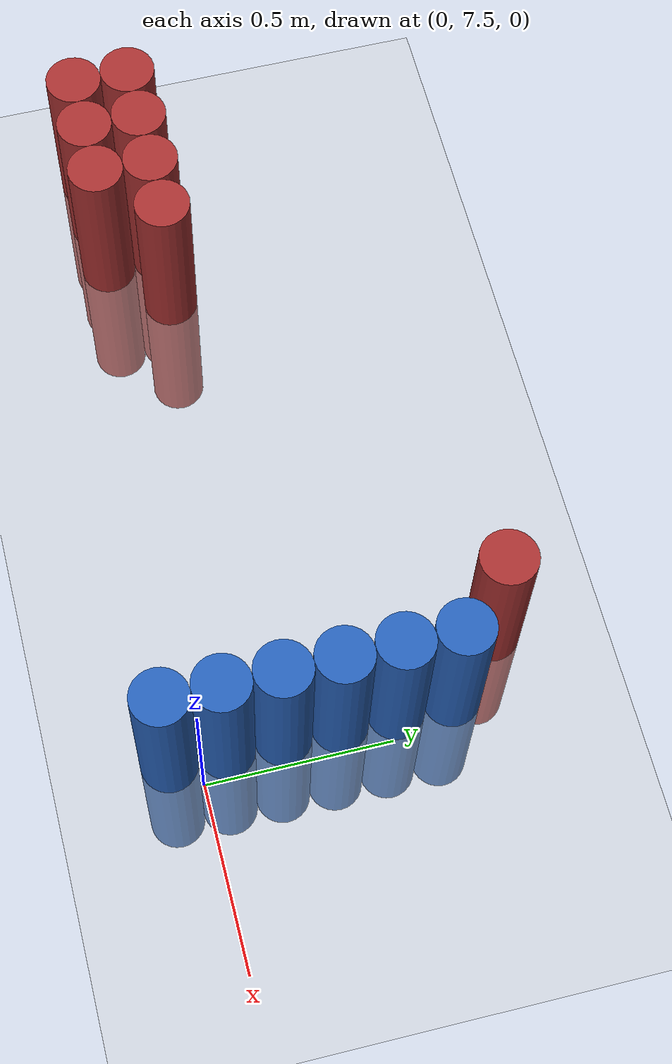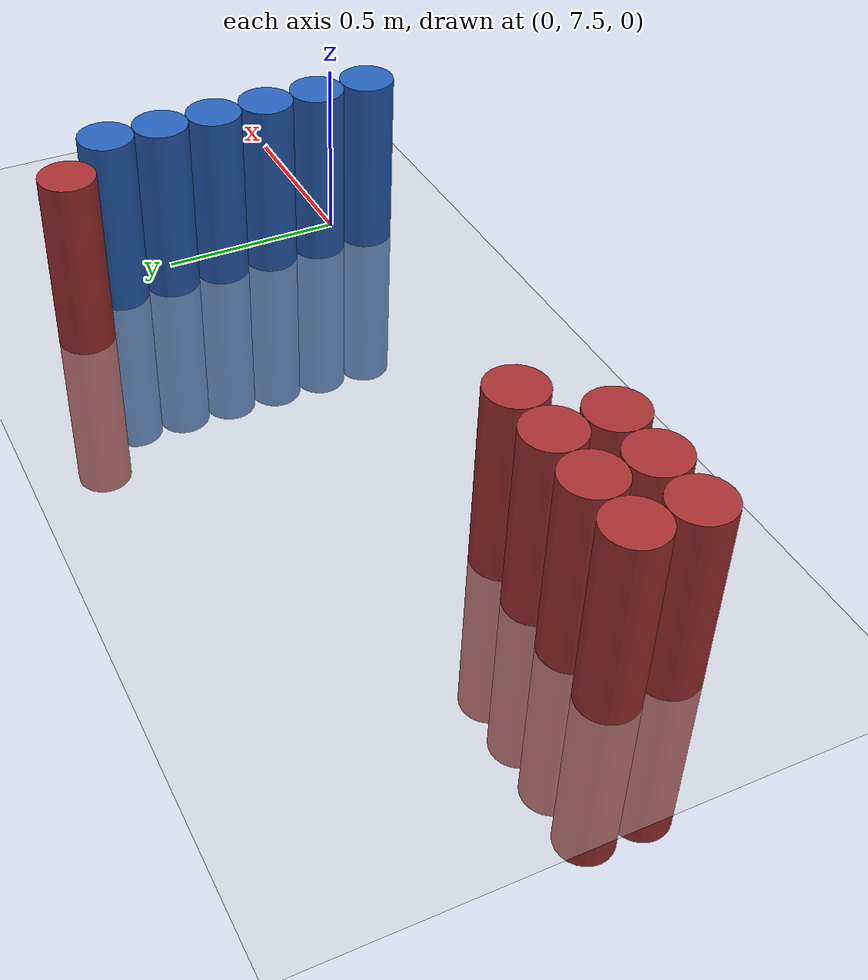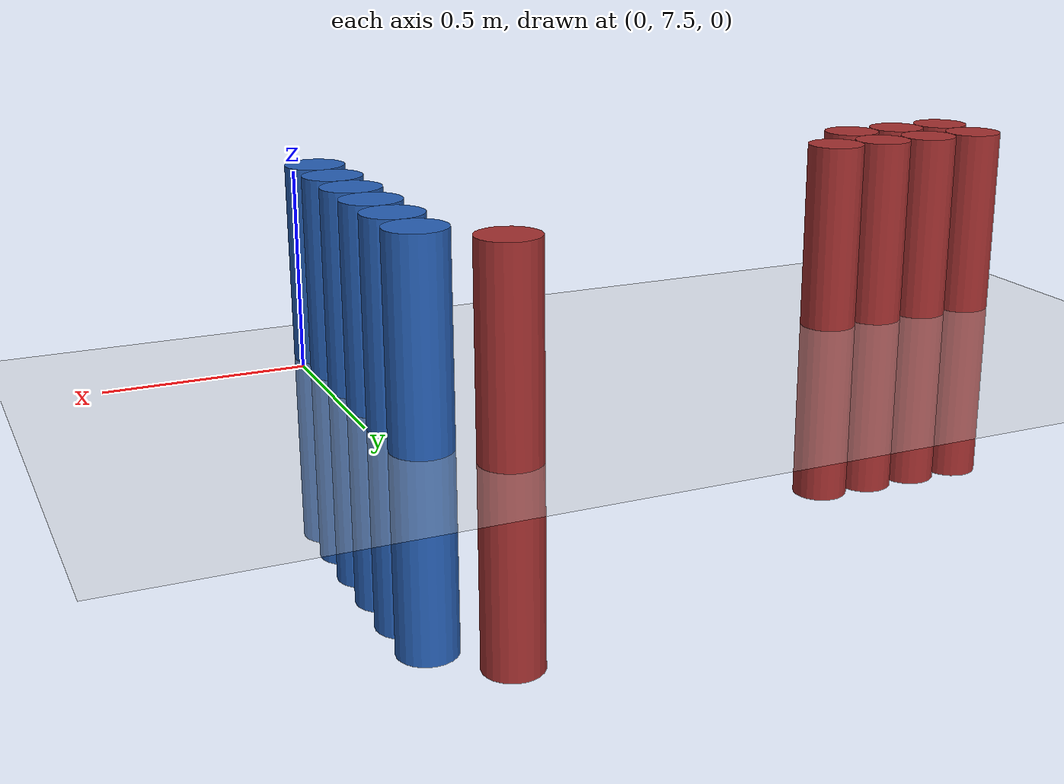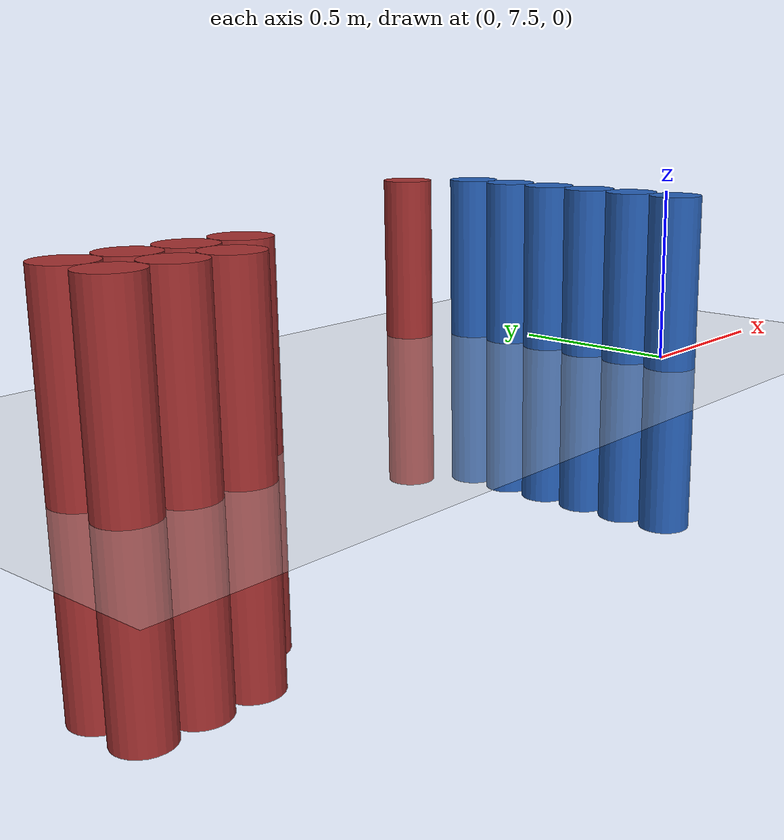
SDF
<sdf version="1.6">
 <world name="world_177">
  <model name="ground_plane">
   <static>1</static>
   <link name="link">
    <collision name="collision">
     <geometry><plane><normal>0 0 1</normal><size>100 100</size></plane></geometry>
     <surface><friction><ode><mu>100</mu><mu2>50</mu2></ode></friction></surface>
    </collision>
    <visual name="visual">
     <cast_shadows>0</cast_shadows>
     <geometry><plane><normal>0 0 1</normal><size>100 100</size></plane></geometry>
     <material>
      <script><uri>file://media/materials/scripts/gazebo.material</uri><name>Gazebo/Grey</name></script>
     </material>
    </visual>
   </link>
  </model>
  <model name="unit_cylinder_160">
   <static>1</static>
   <pose>-1.875000 7.575000 0.000000 0.000000 0.000000 0.000000</pose>
   <link name="link">
    <inertial>
     <mass>1</mass>
     <inertia><ixx>0.145833</ixx><ixy>0</ixy><ixz>0</ixz><iyy>0.145833</iyy><iyz>0</iyz><izz>0.125</izz></inertia>
    </inertial>
    <collision name="collision">
     <geometry><cylinder><radius>0.075000</radius><length>1</length></cylinder></geometry>
    </collision>
    <visual name="visual">
     <geometry><cylinder><radius>0.075000</radius><length>1</length></cylinder></geometry>
     <material>
      <ambient>0.648000 0.192000 0.192000 1</ambient>
      <diffuse>0.648000 0.192000 0.192000 1</diffuse>
     </material>
     <material>
      <script><name>Gazebo/Grey</name><uri>file://media/materials/scripts/gazebo.material</uri></script>
     </material>
    </visual>
   </link>
  </model>
  <model name="unit_cylinder_161">
   <static>1</static>
   <pose>-1.875000 7.725000 0.000000 0.000000 0.000000 0.000000</pose>
   <link name="link">
    <inertial>
     <mass>1</mass>
     <inertia><ixx>0.145833</ixx><ixy>0</ixy><ixz>0</ixz><iyy>0.145833</iyy><iyz>0</iyz><izz>0.125</izz></inertia>
    </inertial>
    <collision name="collision">
     <geometry><cylinder><radius>0.075000</radius><length>1</length></cylinder></geometry>
    </collision>
    <visual name="visual">
     <geometry><cylinder><radius>0.075000</radius><length>1</length></cylinder></geometry>
     <material>
      <ambient>0.648000 0.192000 0.192000 1</ambient>
      <diffuse>0.648000 0.192000 0.192000 1</diffuse>
     </material>
     <material>
      <script><name>Gazebo/Grey</name><uri>file://media/materials/scripts/gazebo.material</uri></script>
     </material>
    </visual>
   </link>
  </model>
  <model name="unit_cylinder_162">
   <static>1</static>
   <pose>-1.725000 7.575000 0.000000 0.000000 0.000000 0.000000</pose>
   <link name="link">
    <inertial>
     <mass>1</mass>
     <inertia><ixx>0.145833</ixx><ixy>0</ixy><ixz>0</ixz><iyy>0.145833</iyy><iyz>0</iyz><izz>0.125</izz></inertia>
    </inertial>
    <collision name="collision">
     <geometry><cylinder><radius>0.075000</radius><length>1</length></cylinder></geometry>
    </collision>
    <visual name="visual">
     <geometry><cylinder><radius>0.075000</radius><length>1</length></cylinder></geometry>
     <material>
      <ambient>0.648000 0.192000 0.192000 1</ambient>
      <diffuse>0.648000 0.192000 0.192000 1</diffuse>
     </material>
     <material>
      <script><name>Gazebo/Grey</name><uri>file://media/materials/scripts/gazebo.material</uri></script>
     </material>
    </visual>
   </link>
  </model>
  <model name="unit_cylinder_163">
   <static>1</static>
   <pose>-1.725000 7.725000 0.000000 0.000000 0.000000 0.000000</pose>
   <link name="link">
    <inertial>
     <mass>1</mass>
     <inertia><ixx>0.145833</ixx><ixy>0</ixy><ixz>0</ixz><iyy>0.145833</iyy><iyz>0</iyz><izz>0.125</izz></inertia>
    </inertial>
    <collision name="collision">
     <geometry><cylinder><radius>0.075000</radius><length>1</length></cylinder></geometry>
    </collision>
    <visual name="visual">
     <geometry><cylinder><radius>0.075000</radius><length>1</length></cylinder></geometry>
     <material>
      <ambient>0.648000 0.192000 0.192000 1</ambient>
      <diffuse>0.648000 0.192000 0.192000 1</diffuse>
     </material>
     <material>
      <script><name>Gazebo/Grey</name><uri>file://media/materials/scripts/gazebo.material</uri></script>
     </material>
    </visual>
   </link>
  </model>
  <model name="unit_cylinder_165">
   <static>1</static>
   <pose>-1.575000 7.575000 0.000000 0.000000 0.000000 0.000000</pose>
   <link name="link">
    <inertial>
     <mass>1</mass>
     <inertia><ixx>0.145833</ixx><ixy>0</ixy><ixz>0</ixz><iyy>0.145833</iyy><iyz>0</iyz><izz>0.125</izz></inertia>
    </inertial>
    <collision name="collision">
     <geometry><cylinder><radius>0.075000</radius><length>1</length></cylinder></geometry>
    </collision>
    <visual name="visual">
     <geometry><cylinder><radius>0.075000</radius><length>1</length></cylinder></geometry>
     <material>
      <ambient>0.648000 0.192000 0.192000 1</ambient>
      <diffuse>0.648000 0.192000 0.192000 1</diffuse>
     </material>
     <material>
      <script><name>Gazebo/Grey</name><uri>file://media/materials/scripts/gazebo.material</uri></script>
     </material>
    </visual>
   </link>
  </model>
  <model name="unit_cylinder_166">
   <static>1</static>
   <pose>-1.575000 7.725000 0.000000 0.000000 0.000000 0.000000</pose>
   <link name="link">
    <inertial>
     <mass>1</mass>
     <inertia><ixx>0.145833</ixx><ixy>0</ixy><ixz>0</ixz><iyy>0.145833</iyy><iyz>0</iyz><izz>0.125</izz></inertia>
    </inertial>
    <collision name="collision">
     <geometry><cylinder><radius>0.075000</radius><length>1</length></cylinder></geometry>
    </collision>
    <visual name="visual">
     <geometry><cylinder><radius>0.075000</radius><length>1</length></cylinder></geometry>
     <material>
      <ambient>0.648000 0.192000 0.192000 1</ambient>
      <diffuse>0.648000 0.192000 0.192000 1</diffuse>
     </material>
     <material>
      <script><name>Gazebo/Grey</name><uri>file://media/materials/scripts/gazebo.material</uri></script>
     </material>
    </visual>
   </link>
  </model>
  <model name="unit_cylinder_170">
   <static>1</static>
   <pose>-1.425000 7.725000 0.000000 0.000000 0.000000 0.000000</pose>
   <link name="link">
    <inertial>
     <mass>1</mass>
     <inertia><ixx>0.145833</ixx><ixy>0</ixy><ixz>0</ixz><iyy>0.145833</iyy><iyz>0</iyz><izz>0.125</izz></inertia>
    </inertial>
    <collision name="collision">
     <geometry><cylinder><radius>0.075000</radius><length>1</length></cylinder></geometry>
    </collision>
    <visual name="visual">
     <geometry><cylinder><radius>0.075000</radius><length>1</length></cylinder></geometry>
     <material>
      <ambient>0.648000 0.192000 0.192000 1</ambient>
      <diffuse>0.648000 0.192000 0.192000 1</diffuse>
     </material>
     <material>
      <script><name>Gazebo/Grey</name><uri>file://media/materials/scripts/gazebo.material</uri></script>
     </material>
    </visual>
   </link>
  </model>
  <model name="unit_cylinder_189">
   <static>1</static>
   <pose>-0.225000 8.325000 0.000000 0.000000 0.000000 0.000000</pose>
   <link name="link">
    <inertial>
     <mass>1</mass>
     <inertia><ixx>0.145833</ixx><ixy>0</ixy><ixz>0</ixz><iyy>0.145833</iyy><iyz>0</iyz><izz>0.125</izz></inertia>
    </inertial>
    <collision name="collision">
     <geometry><cylinder><radius>0.075000</radius><length>1</length></cylinder></geometry>
    </collision>
    <visual name="visual">
     <geometry><cylinder><radius>0.075000</radius><length>1</length></cylinder></geometry>
     <material>
      <ambient>0.648000 0.192000 0.192000 1</ambient>
      <diffuse>0.648000 0.192000 0.192000 1</diffuse>
     </material>
     <material>
      <script><name>Gazebo/Grey</name><uri>file://media/materials/scripts/gazebo.material</uri></script>
     </material>
    </visual>
   </link>
  </model>
  <model name="unit_cylinder_207">
   <static>1</static>
   <pose>-0.075000 7.425000 0.000000 0.000000 0.000000 0.000000</pose>
   <link name="link">
    <inertial>
     <mass>1</mass>
     <inertia><ixx>0.145833</ixx><ixy>0</ixy><ixz>0</ixz><iyy>0.145833</iyy><iyz>0</iyz><izz>0.125</izz></inertia>
    </inertial>
    <collision name="collision">
     <geometry><cylinder><radius>0.075000</radius><length>1</length></cylinder></geometry>
    </collision>
    <visual name="visual">
     <geometry><cylinder><radius>0.075000</radius><length>1</length></cylinder></geometry>
     <material>
      <ambient>0.152000 0.379000 0.720000 1</ambient>
      <diffuse>0.152000 0.379000 0.720000 1</diffuse>
     </material>
     <material>
      <script><name>Gazebo/Grey</name><uri>file://media/materials/scripts/gazebo.material</uri></script>
     </material>
    </visual>
   </link>
  </model>
  <model name="unit_cylinder_208">
   <static>1</static>
   <pose>-0.075000 7.575000 0.000000 0.000000 0.000000 0.000000</pose>
   <link name="link">
    <inertial>
     <mass>1</mass>
     <inertia><ixx>0.145833</ixx><ixy>0</ixy><ixz>0</ixz><iyy>0.145833</iyy><iyz>0</iyz><izz>0.125</izz></inertia>
    </inertial>
    <collision name="collision">
     <geometry><cylinder><radius>0.075000</radius><length>1</length></cylinder></geometry>
    </collision>
    <visual name="visual">
     <geometry><cylinder><radius>0.075000</radius><length>1</length></cylinder></geometry>
     <material>
      <ambient>0.152000 0.379000 0.720000 1</ambient>
      <diffuse>0.152000 0.379000 0.720000 1</diffuse>
     </material>
     <material>
      <script><name>Gazebo/Grey</name><uri>file://media/materials/scripts/gazebo.material</uri></script>
     </material>
    </visual>
   </link>
  </model>
  <model name="unit_cylinder_209">
   <static>1</static>
   <pose>-0.075000 7.725000 0.000000 0.000000 0.000000 0.000000</pose>
   <link name="link">
    <inertial>
     <mass>1</mass>
     <inertia><ixx>0.145833</ixx><ixy>0</ixy><ixz>0</ixz><iyy>0.145833</iyy><iyz>0</iyz><izz>0.125</izz></inertia>
    </inertial>
    <collision name="collision">
     <geometry><cylinder><radius>0.075000</radius><length>1</length></cylinder></geometry>
    </collision>
    <visual name="visual">
     <geometry><cylinder><radius>0.075000</radius><length>1</length></cylinder></geometry>
     <material>
      <ambient>0.152000 0.379000 0.720000 1</ambient>
      <diffuse>0.152000 0.379000 0.720000 1</diffuse>
     </material>
     <material>
      <script><name>Gazebo/Grey</name><uri>file://media/materials/scripts/gazebo.material</uri></script>
     </material>
    </visual>
   </link>
  </model>
  <model name="unit_cylinder_210">
   <static>1</static>
   <pose>-0.075000 7.875000 0.000000 0.000000 0.000000 0.000000</pose>
   <link name="link">
    <inertial>
     <mass>1</mass>
     <inertia><ixx>0.145833</ixx><ixy>0</ixy><ixz>0</ixz><iyy>0.145833</iyy><iyz>0</iyz><izz>0.125</izz></inertia>
    </inertial>
    <collision name="collision">
     <geometry><cylinder><radius>0.075000</radius><length>1</length></cylinder></geometry>
    </collision>
    <visual name="visual">
     <geometry><cylinder><radius>0.075000</radius><length>1</length></cylinder></geometry>
     <material>
      <ambient>0.152000 0.379000 0.720000 1</ambient>
      <diffuse>0.152000 0.379000 0.720000 1</diffuse>
     </material>
     <material>
      <script><name>Gazebo/Grey</name><uri>file://media/materials/scripts/gazebo.material</uri></script>
     </material>
    </visual>
   </link>
  </model>
  <model name="unit_cylinder_211">
   <static>1</static>
   <pose>-0.075000 8.025000 0.000000 0.000000 0.000000 0.000000</pose>
   <link name="link">
    <inertial>
     <mass>1</mass>
     <inertia><ixx>0.145833</ixx><ixy>0</ixy><ixz>0</ixz><iyy>0.145833</iyy><iyz>0</iyz><izz>0.125</izz></inertia>
    </inertial>
    <collision name="collision">
     <geometry><cylinder><radius>0.075000</radius><length>1</length></cylinder></geometry>
    </collision>
    <visual name="visual">
     <geometry><cylinder><radius>0.075000</radius><length>1</length></cylinder></geometry>
     <material>
      <ambient>0.152000 0.379000 0.720000 1</ambient>
      <diffuse>0.152000 0.379000 0.720000 1</diffuse>
     </material>
     <material>
      <script><name>Gazebo/Grey</name><uri>file://media/materials/scripts/gazebo.material</uri></script>
     </material>
    </visual>
   </link>
  </model>
  <model name="unit_cylinder_212">
   <static>1</static>
   <pose>-0.075000 8.175000 0.000000 0.000000 0.000000 0.000000</pose>
   <link name="link">
    <inertial>
     <mass>1</mass>
     <inertia><ixx>0.145833</ixx><ixy>0</ixy><ixz>0</ixz><iyy>0.145833</iyy><iyz>0</iyz><izz>0.125</izz></inertia>
    </inertial>
    <collision name="collision">
     <geometry><cylinder><radius>0.075000</radius><length>1</length></cylinder></geometry>
    </collision>
    <visual name="visual">
     <geometry><cylinder><radius>0.075000</radius><length>1</length></cylinder></geometry>
     <material>
      <ambient>0.152000 0.379000 0.720000 1</ambient>
      <diffuse>0.152000 0.379000 0.720000 1</diffuse>
     </material>
     <material>
      <script><name>Gazebo/Grey</name><uri>file://media/materials/scripts/gazebo.material</uri></script>
     </material>
    </visual>
   </link>
  </model>
 </world>
</sdf>
